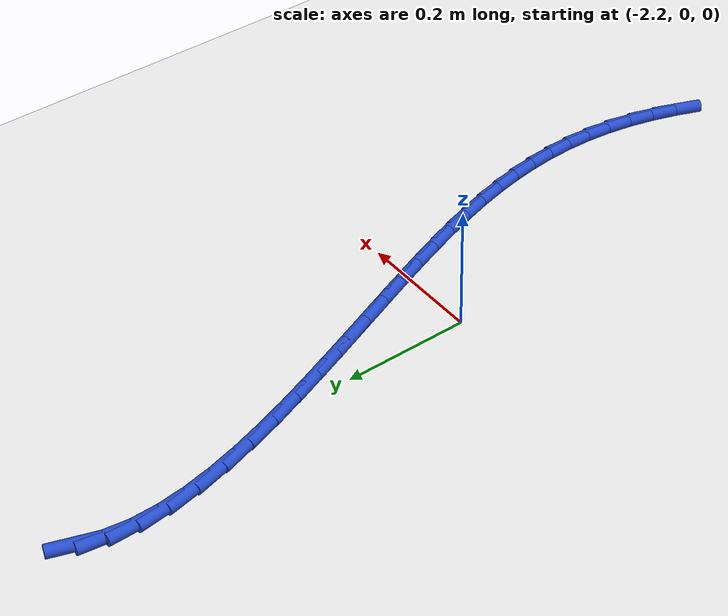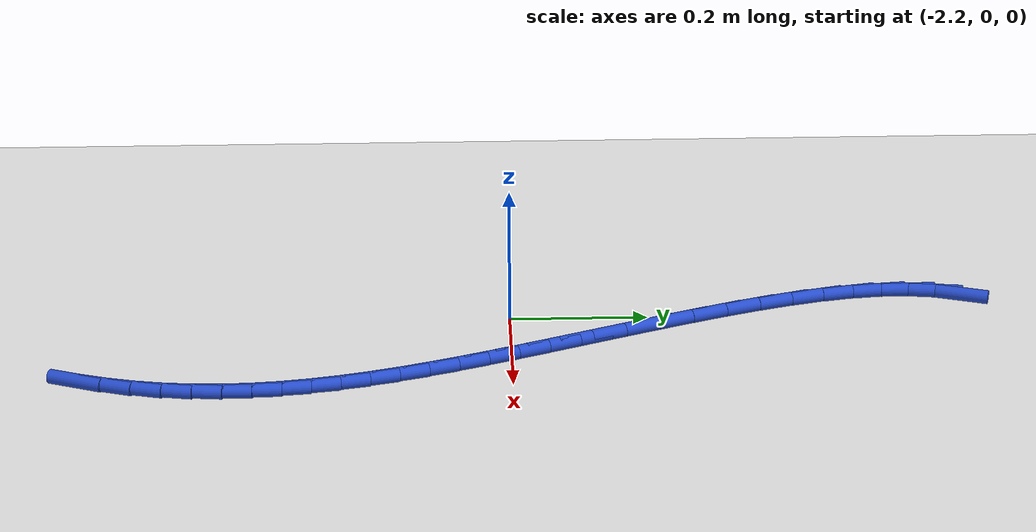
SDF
<sdf version="1.6">
 <world name="default">
  <model name="ground_plane">
   <static>1</static>
   <link name="link">
    <collision name="collision">
     <geometry><plane><normal>0 0 1</normal><size>100 100</size></plane></geometry>
     <surface><friction><ode><mu>100</mu><mu2>50</mu2></ode></friction></surface>
    </collision>
    <visual name="visual">
     <cast_shadows>0</cast_shadows>
     <geometry><plane><normal>0 0 1</normal><size>100 100</size></plane></geometry>
     <material>
      <script><uri>file://media/materials/scripts/gazebo.material</uri><name>Gazebo/WhiteGlow</name></script>
     </material>
    </visual>
   </link>
  </model>
  <model name="line">
   <link name="link_73">
    <pose>-2.2414753884733436 0.6644782553779486 0.01 0 1.57 1.2437995581526191</pose>
    <collision name="collision">
     <geometry><cylinder><radius>0.01</radius><length>0.08</length></cylinder></geometry>
    </collision>
    <visual name="visual">
     <material>
      <script><name>Gazebo/Blue</name><uri>file://media/materials/scripts/gazebo.material</uri></script>
     </material>
     <geometry><cylinder><radius>0.01</radius><length>0.08</length></cylinder></geometry>
    </visual>
   </link>
   <link name="link_74">
    <pose>-2.253624733980415 0.6286577291481376 0.01 0 1.57 1.4342405121999162</pose>
    <collision name="collision">
     <geometry><cylinder><radius>0.01</radius><length>0.08</length></cylinder></geometry>
    </collision>
    <visual name="visual">
     <material>
      <script><name>Gazebo/Blue</name><uri>file://media/materials/scripts/gazebo.material</uri></script>
     </material>
     <geometry><cylinder><radius>0.01</radius><length>0.08</length></cylinder></geometry>
    </visual>
   </link>
   <link name="link_75">
    <pose>-2.25910817480327 0.5887523303593616 0.01 0 1.57 -1.5615154463327876</pose>
    <collision name="collision">
     <geometry><cylinder><radius>0.01</radius><length>0.08</length></cylinder></geometry>
    </collision>
    <visual name="visual">
     <material>
      <script><name>Gazebo/Blue</name><uri>file://media/materials/scripts/gazebo.material</uri></script>
     </material>
     <geometry><cylinder><radius>0.01</radius><length>0.08</length></cylinder></geometry>
    </visual>
   </link>
   <link name="link_76">
    <pose>-2.2587058536144076 0.5454041114957212 0.01 0 1.57 -1.4520069624338265</pose>
    <collision name="collision">
     <geometry><cylinder><radius>0.01</radius><length>0.08</length></cylinder></geometry>
    </collision>
    <visual name="visual">
     <material>
      <script><name>Gazebo/Blue</name><uri>file://media/materials/scripts/gazebo.material</uri></script>
     </material>
     <geometry><cylinder><radius>0.01</radius><length>0.08</length></cylinder></geometry>
    </visual>
   </link>
   <link name="link_77">
    <pose>-2.2531979130863276 0.4992551250413159 0.01 0 1.57 -1.3699820038322505</pose>
    <collision name="collision">
     <geometry><cylinder><radius>0.01</radius><length>0.08</length></cylinder></geometry>
    </collision>
    <visual name="visual">
     <material>
      <script><name>Gazebo/Blue</name><uri>file://media/materials/scripts/gazebo.material</uri></script>
     </material>
     <geometry><cylinder><radius>0.01</radius><length>0.08</length></cylinder></geometry>
    </visual>
   </link>
   <link name="link_78">
    <pose>-2.2433644958915293 0.4509474234802474 0.01 0 1.57 -1.3084660745493457</pose>
    <collision name="collision">
     <geometry><cylinder><radius>0.01</radius><length>0.08</length></cylinder></geometry>
    </collision>
    <visual name="visual">
     <material>
      <script><name>Gazebo/Blue</name><uri>file://media/materials/scripts/gazebo.material</uri></script>
     </material>
     <geometry><cylinder><radius>0.01</radius><length>0.08</length></cylinder></geometry>
    </visual>
   </link>
   <link name="link_79">
    <pose>-2.2299857447025127 0.40112305929661574 0.01 0 1.57 -1.2625205578888958</pose>
    <collision name="collision">
     <geometry><cylinder><radius>0.01</radius><length>0.08</length></cylinder></geometry>
    </collision>
    <visual name="visual">
     <material>
      <script><name>Gazebo/Blue</name><uri>file://media/materials/scripts/gazebo.material</uri></script>
     </material>
     <geometry><cylinder><radius>0.01</radius><length>0.08</length></cylinder></geometry>
    </visual>
   </link>
   <link name="link_80">
    <pose>-2.2138418021917765 0.3504240849745206 0.01 0 1.57 -1.2288322317570486</pose>
    <collision name="collision">
     <geometry><cylinder><radius>0.01</radius><length>0.08</length></cylinder></geometry>
    </collision>
    <visual name="visual">
     <material>
      <script><name>Gazebo/Blue</name><uri>file://media/materials/scripts/gazebo.material</uri></script>
     </material>
     <geometry><cylinder><radius>0.01</radius><length>0.08</length></cylinder></geometry>
    </visual>
   </link>
   <link name="link_81">
    <pose>-2.195712811031821 0.2994925529980636 0.01 0 1.57 -1.2053074245564241</pose>
    <collision name="collision">
     <geometry><cylinder><radius>0.01</radius><length>0.08</length></cylinder></geometry>
    </collision>
    <visual name="visual">
     <material>
      <script><name>Gazebo/Blue</name><uri>file://media/materials/scripts/gazebo.material</uri></script>
     </material>
     <geometry><cylinder><radius>0.01</radius><length>0.08</length></cylinder></geometry>
    </visual>
   </link>
   <link name="link_82">
    <pose>-2.176378913895146 0.24897051585134464 0.01 0 1.57 -1.1907591544788212</pose>
    <collision name="collision">
     <geometry><cylinder><radius>0.01</radius><length>0.08</length></cylinder></geometry>
    </collision>
    <visual name="visual">
     <material>
      <script><name>Gazebo/Blue</name><uri>file://media/materials/scripts/gazebo.material</uri></script>
     </material>
     <geometry><cylinder><radius>0.01</radius><length>0.08</length></cylinder></geometry>
    </visual>
   </link>
   <link name="link_83">
    <pose>-2.1566149815928974 0.19949337447885745 0.01 0 1.57 -1.182815162359199</pose>
    <collision name="collision">
     <geometry><cylinder><radius>0.01</radius><length>0.08</length></cylinder></geometry>
    </collision>
    <visual name="visual">
     <material>
      <script><name>Gazebo/Blue</name><uri>file://media/materials/scripts/gazebo.material</uri></script>
     </material>
     <geometry><cylinder><radius>0.01</radius><length>0.08</length></cylinder></geometry>
    </visual>
   </link>
   <link name="link_84">
    <pose>-2.136957776661934 0.15139610716389426 0.01 0 1.57 -1.1788448320219596</pose>
    <collision name="collision">
     <geometry><cylinder><radius>0.01</radius><length>0.08</length></cylinder></geometry>
    </collision>
    <visual name="visual">
     <material>
      <script><name>Gazebo/Blue</name><uri>file://media/materials/scripts/gazebo.material</uri></script>
     </material>
     <geometry><cylinder><radius>0.01</radius><length>0.08</length></cylinder></geometry>
    </visual>
   </link>
   <link name="link_85">
    <pose>-2.117614067129772 0.10459733610562819 0.01 0 1.57 -1.178949165070046</pose>
    <collision name="collision">
     <geometry><cylinder><radius>0.01</radius><length>0.08</length></cylinder></geometry>
    </collision>
    <visual name="visual">
     <material>
      <script><name>Gazebo/Blue</name><uri>file://media/materials/scripts/gazebo.material</uri></script>
     </material>
     <geometry><cylinder><radius>0.01</radius><length>0.08</length></cylinder></geometry>
    </visual>
   </link>
   <link name="link_86">
    <pose>-2.0987663561574634 0.058985068373295924 0.01 0 1.57 -1.183454744831318</pose>
    <collision name="collision">
     <geometry><cylinder><radius>0.01</radius><length>0.08</length></cylinder></geometry>
    </collision>
    <visual name="visual">
     <material>
      <script><name>Gazebo/Blue</name><uri>file://media/materials/scripts/gazebo.material</uri></script>
     </material>
     <geometry><cylinder><radius>0.01</radius><length>0.08</length></cylinder></geometry>
    </visual>
   </link>
   <link name="link_87">
    <pose>-2.080597146906062 0.014447311036132851 0.01 0 1.57 -1.1927037103041396</pose>
    <collision name="collision">
     <geometry><cylinder><radius>0.01</radius><length>0.08</length></cylinder></geometry>
    </collision>
    <visual name="visual">
     <material>
      <script><name>Gazebo/Blue</name><uri>file://media/materials/scripts/gazebo.material</uri></script>
     </material>
     <geometry><cylinder><radius>0.01</radius><length>0.08</length></cylinder></geometry>
    </visual>
   </link>
   <link name="link_88">
    <pose>-2.063288942536619 -0.02912792883662562 0.01 0 1.57 -1.2070501078858256</pose>
    <collision name="collision">
     <geometry><cylinder><radius>0.01</radius><length>0.08</length></cylinder></geometry>
    </collision>
    <visual name="visual">
     <material>
      <script><name>Gazebo/Blue</name><uri>file://media/materials/scripts/gazebo.material</uri></script>
     </material>
     <geometry><cylinder><radius>0.01</radius><length>0.08</length></cylinder></geometry>
    </visual>
   </link>
   <link name="link_89">
    <pose>-2.047024246210188 -0.07185264417574279 0.01 0 1.57 -1.2268513111688275</pose>
    <collision name="collision">
     <geometry><cylinder><radius>0.01</radius><length>0.08</length></cylinder></geometry>
    </collision>
    <visual name="visual">
     <material>
      <script><name>Gazebo/Blue</name><uri>file://media/materials/scripts/gazebo.material</uri></script>
     </material>
     <geometry><cylinder><radius>0.01</radius><length>0.08</length></cylinder></geometry>
    </visual>
   </link>
   <link name="link_90">
    <pose>-2.0319855610878212 -0.11383882791198321 0.01 0 1.57 -1.252452453273185</pose>
    <collision name="collision">
     <geometry><cylinder><radius>0.01</radius><length>0.08</length></cylinder></geometry>
    </collision>
    <visual name="visual">
     <material>
      <script><name>Gazebo/Blue</name><uri>file://media/materials/scripts/gazebo.material</uri></script>
     </material>
     <geometry><cylinder><radius>0.01</radius><length>0.08</length></cylinder></geometry>
    </visual>
   </link>
   <link name="link_91">
    <pose>-2.018355390330572 -0.15519847297611106 0.01 0 1.57 -1.2841616222053562</pose>
    <collision name="collision">
     <geometry><cylinder><radius>0.01</radius><length>0.08</length></cylinder></geometry>
    </collision>
    <visual name="visual">
     <material>
      <script><name>Gazebo/Blue</name><uri>file://media/materials/scripts/gazebo.material</uri></script>
     </material>
     <geometry><cylinder><radius>0.01</radius><length>0.08</length></cylinder></geometry>
    </visual>
   </link>
   <link name="link_92">
    <pose>-2.006316237099491 -0.19604357229889124 0.01 0 1.57 -1.3222138735716942</pose>
    <collision name="collision">
     <geometry><cylinder><radius>0.01</radius><length>0.08</length></cylinder></geometry>
    </collision>
    <visual name="visual">
     <material>
      <script><name>Gazebo/Blue</name><uri>file://media/materials/scripts/gazebo.material</uri></script>
     </material>
     <geometry><cylinder><radius>0.01</radius><length>0.08</length></cylinder></geometry>
    </visual>
   </link>
   <link name="link_93">
    <pose>-1.9960506045556339 -0.23648611881108644 0.01 0 1.57 -1.366723390201146</pose>
    <collision name="collision">
     <geometry><cylinder><radius>0.01</radius><length>0.08</length></cylinder></geometry>
    </collision>
    <visual name="visual">
     <material>
      <script><name>Gazebo/Blue</name><uri>file://media/materials/scripts/gazebo.material</uri></script>
     </material>
     <geometry><cylinder><radius>0.01</radius><length>0.08</length></cylinder></geometry>
    </visual>
   </link>
   <link name="link_94">
    <pose>-1.9877409958600505 -0.2766381054434614 0.01 0 1.57 -1.417625900107749</pose>
    <collision name="collision">
     <geometry><cylinder><radius>0.01</radius><length>0.08</length></cylinder></geometry>
    </collision>
    <visual name="visual">
     <material>
      <script><name>Gazebo/Blue</name><uri>file://media/materials/scripts/gazebo.material</uri></script>
     </material>
     <geometry><cylinder><radius>0.01</radius><length>0.08</length></cylinder></geometry>
    </visual>
   </link>
   <link name="link_95">
    <pose>-1.9815699141737957 -0.31661152512678054 0.01 0 1.57 -1.4746180197877228</pose>
    <collision name="collision">
     <geometry><cylinder><radius>0.01</radius><length>0.08</length></cylinder></geometry>
    </collision>
    <visual name="visual">
     <material>
      <script><name>Gazebo/Blue</name><uri>file://media/materials/scripts/gazebo.material</uri></script>
     </material>
     <geometry><cylinder><radius>0.01</radius><length>0.08</length></cylinder></geometry>
    </visual>
   </link>
   <link name="link_96">
    <pose>-1.9777198626579207 -0.3565183707918077 0.01 0 1.57 -1.5371059038016008</pose>
    <collision name="collision">
     <geometry><cylinder><radius>0.01</radius><length>0.08</length></cylinder></geometry>
    </collision>
    <visual name="visual">
     <material>
      <script><name>Gazebo/Blue</name><uri>file://media/materials/scripts/gazebo.material</uri></script>
     </material>
     <geometry><cylinder><radius>0.01</radius><length>0.08</length></cylinder></geometry>
    </visual>
   </link>
   <link name="link_97">
    <pose>-1.9763733444734783 -0.39647063536930727 0.01 0 1.57 1.537412346570951</pose>
    <collision name="collision">
     <geometry><cylinder><radius>0.01</radius><length>0.08</length></cylinder></geometry>
    </collision>
    <visual name="visual">
     <material>
      <script><name>Gazebo/Blue</name><uri>file://media/materials/scripts/gazebo.material</uri></script>
     </material>
     <geometry><cylinder><radius>0.01</radius><length>0.08</length></cylinder></geometry>
    </visual>
   </link>
   <link name="link_98">
    <pose>-1.9777128627815213 -0.4365803117900441 0.01 0 1.57 1.4669573476616486</pose>
    <collision name="collision">
     <geometry><cylinder><radius>0.01</radius><length>0.08</length></cylinder></geometry>
    </collision>
    <visual name="visual">
     <material>
      <script><name>Gazebo/Blue</name><uri>file://media/materials/scripts/gazebo.material</uri></script>
     </material>
     <geometry><cylinder><radius>0.01</radius><length>0.08</length></cylinder></geometry>
    </visual>
   </link>
   <link name="link_99">
    <pose>-1.9819209207431023 -0.4769593929847808 0.01 0 1.57 1.3945524655283525</pose>
    <collision name="collision">
     <geometry><cylinder><radius>0.01</radius><length>0.08</length></cylinder></geometry>
    </collision>
    <visual name="visual">
     <material>
      <script><name>Gazebo/Blue</name><uri>file://media/materials/scripts/gazebo.material</uri></script>
     </material>
     <geometry><cylinder><radius>0.01</radius><length>0.08</length></cylinder></geometry>
    </visual>
   </link>
   <link name="link_100">
    <pose>-1.9891800215192743 -0.5177198718842823 0.01 0 1.57 1.3217340151837842</pose>
    <collision name="collision">
     <geometry><cylinder><radius>0.01</radius><length>0.08</length></cylinder></geometry>
    </collision>
    <visual name="visual">
     <material>
      <script><name>Gazebo/Blue</name><uri>file://media/materials/scripts/gazebo.material</uri></script>
     </material>
     <geometry><cylinder><radius>0.01</radius><length>0.08</length></cylinder></geometry>
    </visual>
   </link>
   <link name="link_101">
    <pose>-1.9996726682710895 -0.5589737414193126 0.01 0 1.57 1.2505816919922608</pose>
    <collision name="collision">
     <geometry><cylinder><radius>0.01</radius><length>0.08</length></cylinder></geometry>
    </collision>
    <visual name="visual">
     <material>
      <script><name>Gazebo/Blue</name><uri>file://media/materials/scripts/gazebo.material</uri></script>
     </material>
     <geometry><cylinder><radius>0.01</radius><length>0.08</length></cylinder></geometry>
    </visual>
   </link>
   <link name="link_102">
    <pose>-2.013551942515562 -0.6008257256181361 0.01 0 1.57 1.197412610690367</pose>
    <collision name="collision">
     <geometry><cylinder><radius>0.01</radius><length>0.08</length></cylinder></geometry>
    </collision>
    <visual name="visual">
     <material>
      <script><name>Gazebo/Blue</name><uri>file://media/materials/scripts/gazebo.material</uri></script>
     </material>
     <geometry><cylinder><radius>0.01</radius><length>0.08</length></cylinder></geometry>
    </visual>
   </link>
  </model>
 </world>
</sdf>
